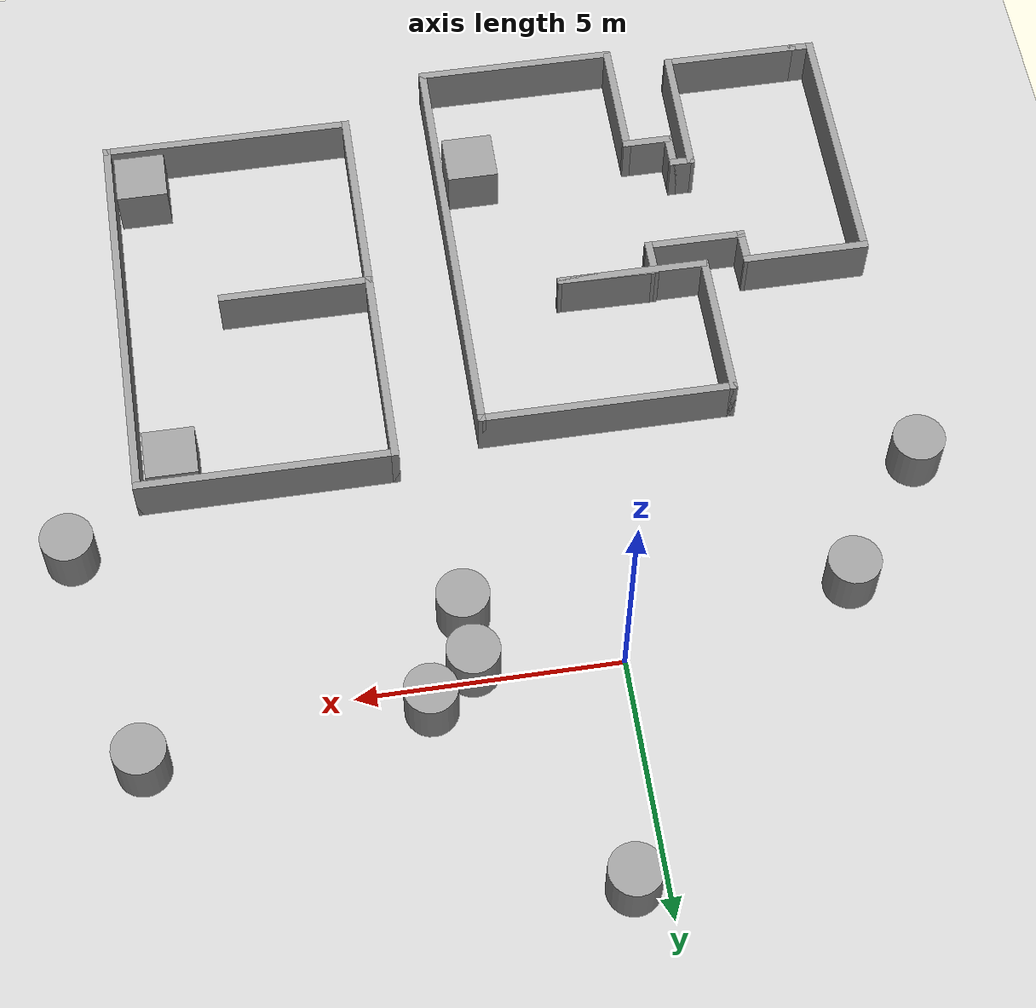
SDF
<sdf version="1.7">
 <world name="default">
  <light name="sun" type="directional">
   <pose>0 0 10 0 -0 0</pose>
   <diffuse>0.8 0.8 0.8 1</diffuse>
   <specular>0.2 0.2 0.2 1</specular>
   <attenuation>
    <range>1000</range>
    <constant>0.9</constant>
    <linear>0.01</linear>
    <quadratic>0.001</quadratic>
   </attenuation>
   <direction>-0.5 0.1 -0.9</direction>
   <spot><inner_angle>0</inner_angle><outer_angle>0</outer_angle><falloff>0</falloff></spot>
  </light>
  <model name="ground_plane">
   <static>1</static>
   <link name="link">
    <collision name="collision">
     <geometry><plane><normal>0 0 1</normal><size>100 100</size></plane></geometry>
     <surface>
      <contact><collide_bitmask>65535</collide_bitmask></contact>
      <friction><ode><mu>100</mu><mu2>50</mu2></ode></friction>
     </surface>
    </collision>
    <visual name="visual">
     <cast_shadows>0</cast_shadows>
     <geometry><plane><normal>0 0 1</normal><size>100 100</size></plane></geometry>
     <material>
      <script><uri>file://media/materials/scripts/gazebo.material</uri><name>Gazebo/Grey</name></script>
     </material>
    </visual>
   </link>
  </model>
  <gravity>0 0 -9.8</gravity>
  <magnetic_field>6e-06 2.3e-05 -4.2e-05</magnetic_field>
  <atmosphere type="adiabatic"/>
  <physics type="ode">
   <max_step_size>0.001</max_step_size>
   <real_time_factor>1</real_time_factor>
   <real_time_update_rate>1000</real_time_update_rate>
  </physics>
  <scene><ambient>0.4 0.4 0.4 1</ambient><background>0.7 0.7 0.7 1</background><shadows>1</shadows></scene>
  <spherical_coordinates>
   <surface_model>EARTH_WGS84</surface_model>
   <latitude_deg>0</latitude_deg>
   <longitude_deg>0</longitude_deg>
   <elevation>0</elevation>
   <heading_deg>0</heading_deg>
  </spherical_coordinates>
  <model name="racecar_rl_env4">
   <pose>-2.1054 -6.7075 0 0 -0 0</pose>
   <link name="Wall_0">
    <collision name="Wall_0_Collision">
     <geometry><box><size>5 0.15 1</size></box></geometry>
     <pose>0 0 0.5 0 -0 0</pose>
    </collision>
    <visual name="Wall_0_Visual">
     <pose>0 0 0.5 0 -0 0</pose>
     <geometry><box><size>5 0.15 1</size></box></geometry>
     <material>
      <script><uri>file://media/materials/scripts/gazebo.material</uri><name>Gazebo/Grey</name></script>
      <ambient>1 1 1 1</ambient>
     </material>
     <meta><layer>0</layer></meta>
    </visual>
    <pose>1.6004 1.7175 0 0 -0 0</pose>
   </link>
   <link name="Wall_10">
    <collision name="Wall_10_Collision">
     <geometry><box><size>0.5 0.15 1</size></box></geometry>
     <pose>0 0 0.5 0 -0 0</pose>
    </collision>
    <visual name="Wall_10_Visual">
     <pose>0 0 0.5 0 -0 0</pose>
     <geometry><box><size>0.5 0.15 1</size></box></geometry>
     <material>
      <script><uri>file://media/materials/scripts/gazebo.material</uri><name>Gazebo/Grey</name></script>
      <ambient>1 1 1 1</ambient>
     </material>
     <meta><layer>0</layer></meta>
    </visual>
    <pose>-0.849604 -3.6825 0 0 -0 3.14159</pose>
   </link>
   <link name="Wall_11">
    <collision name="Wall_11_Collision">
     <geometry><box><size>2.7041 0.15 1</size></box></geometry>
     <pose>0 0 0.5 0 -0 0</pose>
    </collision>
    <visual name="Wall_11_Visual">
     <pose>0 0 0.5 0 -0 0</pose>
     <geometry><box><size>2.7041 0.15 1</size></box></geometry>
     <material>
      <script><uri>file://media/materials/scripts/gazebo.material</uri><name>Gazebo/Grey</name></script>
      <ambient>1 1 1 1</ambient>
     </material>
     <meta><layer>0</layer></meta>
    </visual>
    <pose>-1.03611 -4.9595 0 0 -0 -1.5798</pose>
   </link>
   <link name="Wall_12">
    <collision name="Wall_12_Collision">
     <geometry><box><size>2.75 0.15 1</size></box></geometry>
     <pose>0 0 0.5 0 -0 0</pose>
    </collision>
    <visual name="Wall_12_Visual">
     <pose>0 0 0.5 0 -0 0</pose>
     <geometry><box><size>2.75 0.15 1</size></box></geometry>
     <material>
      <script><uri>file://media/materials/scripts/gazebo.material</uri><name>Gazebo/Grey</name></script>
      <ambient>1 1 1 1</ambient>
     </material>
     <meta><layer>0</layer></meta>
    </visual>
    <pose>-2.34761 -6.2365 0 0 -0 3.14159</pose>
   </link>
   <link name="Wall_14">
    <collision name="Wall_14_Collision">
     <geometry><box><size>3.027 0.15 1</size></box></geometry>
     <pose>0 0 0.5 0 -0 0</pose>
    </collision>
    <visual name="Wall_14_Visual">
     <pose>0 0 0.5 0 -0 0</pose>
     <geometry><box><size>3.027 0.15 1</size></box></geometry>
     <material>
      <script><uri>file://media/materials/scripts/gazebo.material</uri><name>Gazebo/Grey</name></script>
      <ambient>1 1 1 1</ambient>
     </material>
     <meta><layer>0</layer></meta>
    </visual>
    <pose>-0.824605 0.279 0 0 -0 -1.5708</pose>
   </link>
   <link name="Wall_15">
    <collision name="Wall_15_Collision">
     <geometry><box><size>3 0.15 1</size></box></geometry>
     <pose>0 0 0.5 0 -0 0</pose>
    </collision>
    <visual name="Wall_15_Visual">
     <pose>0 0 0.5 0 -0 0</pose>
     <geometry><box><size>3 0.15 1</size></box></geometry>
     <material>
      <script><uri>file://media/materials/scripts/gazebo.material</uri><name>Gazebo/Grey</name></script>
      <ambient>1 1 1 1</ambient>
     </material>
     <meta><layer>0</layer></meta>
    </visual>
    <pose>0.600396 -1.1595 0 0 -0 0</pose>
   </link>
   <link name="Wall_17">
    <collision name="Wall_17_Collision">
     <geometry><box><size>2.0002 0.15 1</size></box></geometry>
     <pose>0 0 0.5 0 -0 0</pose>
    </collision>
    <visual name="Wall_17_Visual">
     <pose>0 0 0.5 0 -0 0</pose>
     <geometry><box><size>2.0002 0.15 1</size></box></geometry>
     <material>
      <script><uri>file://media/materials/scripts/gazebo.material</uri><name>Gazebo/Grey</name></script>
      <ambient>1 1 1 1</ambient>
     </material>
     <meta><layer>0</layer></meta>
    </visual>
    <pose>1.1004 -1.146 0 0 -0 3.127</pose>
   </link>
   <link name="Wall_18">
    <collision name="Wall_18_Collision">
     <geometry><box><size>0.758053 0.15 1</size></box></geometry>
     <pose>0 0 0.5 0 -0 0</pose>
    </collision>
    <visual name="Wall_18_Visual">
     <pose>0 0 0.5 0 -0 0</pose>
     <geometry><box><size>0.758053 0.15 1</size></box></geometry>
     <material>
      <script><uri>file://media/materials/scripts/gazebo.material</uri><name>Gazebo/Grey</name></script>
      <ambient>1 1 1 1</ambient>
     </material>
     <meta><layer>0</layer></meta>
    </visual>
    <pose>0.179395 -1.4365 0 0 -0 -1.55764</pose>
   </link>
   <link name="Wall_19">
    <collision name="Wall_19_Collision">
     <geometry><box><size>2 0.15 1</size></box></geometry>
     <pose>0 0 0.5 0 -0 0</pose>
    </collision>
    <visual name="Wall_19_Visual">
     <pose>0 0 0.5 0 -0 0</pose>
     <geometry><box><size>2 0.15 1</size></box></geometry>
     <material>
      <script><uri>file://media/materials/scripts/gazebo.material</uri><name>Gazebo/Grey</name></script>
      <ambient>1 1 1 1</ambient>
     </material>
     <meta><layer>0</layer></meta>
    </visual>
    <pose>-0.741604 -1.7405 0 0 -0 3.14159</pose>
   </link>
   <link name="Wall_2">
    <collision name="Wall_2_Collision">
     <geometry><box><size>8.5 0.15 1</size></box></geometry>
     <pose>0 0 0.5 0 -0 0</pose>
    </collision>
    <visual name="Wall_2_Visual">
     <pose>0 0 0.5 0 -0 0</pose>
     <geometry><box><size>8.5 0.15 1</size></box></geometry>
     <material>
      <script><uri>file://media/materials/scripts/gazebo.material</uri><name>Gazebo/Grey</name></script>
      <ambient>1 1 1 1</ambient>
     </material>
     <meta><layer>0</layer></meta>
    </visual>
    <pose>4.02539 -2.4575 0 0 -0 -1.5708</pose>
   </link>
   <link name="Wall_20">
    <collision name="Wall_20_Collision">
     <geometry><box><size>0.758053 0.15 1</size></box></geometry>
     <pose>0 0 0.5 0 -0 0</pose>
    </collision>
    <visual name="Wall_20_Visual">
     <pose>0 0 0.5 0 -0 0</pose>
     <geometry><box><size>0.758053 0.15 1</size></box></geometry>
     <material>
      <script><uri>file://media/materials/scripts/gazebo.material</uri><name>Gazebo/Grey</name></script>
      <ambient>1 1 1 1</ambient>
     </material>
     <meta><layer>0</layer></meta>
    </visual>
    <pose>-1.6706 -1.4365 0 0 -0 1.58395</pose>
   </link>
   <link name="Wall_21">
    <collision name="Wall_21_Collision">
     <geometry><box><size>2.5 0.15 1</size></box></geometry>
     <pose>0 0 0.5 0 -0 0</pose>
    </collision>
    <visual name="Wall_21_Visual">
     <pose>0 0 0.5 0 -0 0</pose>
     <geometry><box><size>2.5 0.15 1</size></box></geometry>
     <material>
      <script><uri>file://media/materials/scripts/gazebo.material</uri><name>Gazebo/Grey</name></script>
      <ambient>1 1 1 1</ambient>
     </material>
     <meta><layer>0</layer></meta>
    </visual>
    <pose>-2.8496 -1.1325 0 0 -0 3.14159</pose>
   </link>
   <link name="Wall_22">
    <collision name="Wall_22_Collision">
     <geometry><box><size>5.25 0.15 1</size></box></geometry>
     <pose>0 0 0.5 0 -0 0</pose>
    </collision>
    <visual name="Wall_22_Visual">
     <pose>0 0 0.5 0 -0 0</pose>
     <geometry><box><size>5.25 0.15 1</size></box></geometry>
     <material>
      <script><uri>file://media/materials/scripts/gazebo.material</uri><name>Gazebo/Grey</name></script>
      <ambient>1 1 1 1</ambient>
     </material>
     <meta><layer>0</layer></meta>
    </visual>
    <pose>-4.02461 -3.6825 0 0 -0 -1.5708</pose>
   </link>
   <link name="Wall_23">
    <collision name="Wall_23_Collision">
     <geometry><box><size>0.527021 0.15 1</size></box></geometry>
     <pose>0 0 0.5 0 -0 0</pose>
    </collision>
    <visual name="Wall_23_Visual">
     <pose>0 0 0.5 0 -0 0</pose>
     <geometry><box><size>0.527021 0.15 1</size></box></geometry>
     <material>
      <script><uri>file://media/materials/scripts/gazebo.material</uri><name>Gazebo/Grey</name></script>
      <ambient>1 1 1 1</ambient>
     </material>
     <meta><layer>0</layer></meta>
    </visual>
    <pose>-3.8361 -6.2345 0 0 -0 -0.01061</pose>
   </link>
   <link name="Wall_3">
    <collision name="Wall_3_Collision">
     <geometry><box><size>4 0.15 1</size></box></geometry>
     <pose>0 0 0.5 0 -0 0</pose>
    </collision>
    <visual name="Wall_3_Visual">
     <pose>0 0 0.5 0 -0 0</pose>
     <geometry><box><size>4 0.15 1</size></box></geometry>
     <material>
      <script><uri>file://media/materials/scripts/gazebo.material</uri><name>Gazebo/Grey</name></script>
      <ambient>1 1 1 1</ambient>
     </material>
     <meta><layer>0</layer></meta>
    </visual>
    <pose>2.10039 -6.6325 0 0 -0 3.14159</pose>
   </link>
   <link name="Wall_4">
    <collision name="Wall_4_Collision">
     <geometry><box><size>2.5 0.15 1</size></box></geometry>
     <pose>0 0 0.5 0 -0 0</pose>
    </collision>
    <visual name="Wall_4_Visual">
     <pose>0 0 0.5 0 -0 0</pose>
     <geometry><box><size>2.5 0.15 1</size></box></geometry>
     <material>
      <script><uri>file://media/materials/scripts/gazebo.material</uri><name>Gazebo/Grey</name></script>
      <ambient>1 1 1 1</ambient>
     </material>
     <meta><layer>0</layer></meta>
    </visual>
    <pose>0.175396 -5.4575 0 0 -0 1.5708</pose>
   </link>
   <link name="Wall_5">
    <collision name="Wall_5_Collision">
     <geometry><box><size>1 0.15 1</size></box></geometry>
     <pose>0 0 0.5 0 -0 0</pose>
    </collision>
    <visual name="Wall_5_Visual">
     <pose>0 0 0.5 0 -0 0</pose>
     <geometry><box><size>1 0.15 1</size></box></geometry>
     <material>
      <script><uri>file://media/materials/scripts/gazebo.material</uri><name>Gazebo/Grey</name></script>
      <ambient>1 1 1 1</ambient>
     </material>
     <meta><layer>0</layer></meta>
    </visual>
    <pose>-0.249605 -4.2825 0 0 -0 3.14159</pose>
   </link>
   <link name="Wall_9">
    <collision name="Wall_9_Collision">
     <geometry><box><size>0.75 0.15 1</size></box></geometry>
     <pose>0 0 0.5 0 -0 0</pose>
    </collision>
    <visual name="Wall_9_Visual">
     <pose>0 0 0.5 0 -0 0</pose>
     <geometry><box><size>0.75 0.15 1</size></box></geometry>
     <material>
      <script><uri>file://media/materials/scripts/gazebo.material</uri><name>Gazebo/Grey</name></script>
      <ambient>1 1 1 1</ambient>
     </material>
     <meta><layer>0</layer></meta>
    </visual>
    <pose>-0.674604 -3.9825 0 0 -0 1.5708</pose>
   </link>
   <static>1</static>
  </model>
  <model name="unit_box">
   <pose>1.26525 -11.1177 0.499995 -1e-05 -0 0</pose>
   <link name="link">
    <inertial>
     <mass>1</mass>
     <inertia>
      <ixx>0.166667</ixx>
      <ixy>0</ixy>
      <ixz>0</ixz>
      <iyy>0.166667</iyy>
      <iyz>0</iyz>
      <izz>0.166667</izz>
     </inertia>
    </inertial>
    <collision name="collision"><geometry><box><size>1 1 1</size></box></geometry></collision>
    <visual name="visual">
     <geometry><box><size>1 1 1</size></box></geometry>
     <material>
      <script><name>Gazebo/Grey</name><uri>file://media/materials/scripts/gazebo.material</uri></script>
     </material>
    </visual>
   </link>
  </model>
  <model name="Untitled">
   <pose>4.2815 -6.2045 0 0 -0 0</pose>
   <link name="Wall_0">
    <collision name="Wall_0_Collision">
     <geometry><box><size>8 0.15 1</size></box></geometry>
     <pose>0 0 0.5 0 -0 0</pose>
    </collision>
    <visual name="Wall_0_Visual">
     <pose>0 0 0.5 0 -0 0</pose>
     <geometry><box><size>8 0.15 1</size></box></geometry>
     <material>
      <script><uri>file://media/materials/scripts/gazebo.material</uri><name>Gazebo/Grey</name></script>
      <ambient>1 1 1 1</ambient>
     </material>
     <meta><layer>0</layer></meta>
    </visual>
    <pose>-0.6435 -2.2045 0 0 -0 -1.5708</pose>
   </link>
   <link name="Wall_2">
    <collision name="Wall_2_Collision">
     <geometry><box><size>5 0.15 1</size></box></geometry>
     <pose>0 0 0.5 0 -0 0</pose>
    </collision>
    <visual name="Wall_2_Visual">
     <pose>0 0 0.5 0 -0 0</pose>
     <geometry><box><size>5 0.15 1</size></box></geometry>
     <material>
      <script><uri>file://media/materials/scripts/gazebo.material</uri><name>Gazebo/Grey</name></script>
      <ambient>1 1 1 1</ambient>
     </material>
     <meta><layer>0</layer></meta>
    </visual>
    <pose>1.7815 1.7205 0 0 -0 0</pose>
   </link>
   <link name="Wall_3">
    <collision name="Wall_3_Collision">
     <geometry><box><size>8 0.15 1</size></box></geometry>
     <pose>0 0 0.5 0 -0 0</pose>
    </collision>
    <visual name="Wall_3_Visual">
     <pose>0 0 0.5 0 -0 0</pose>
     <geometry><box><size>8 0.15 1</size></box></geometry>
     <material>
      <script><uri>file://media/materials/scripts/gazebo.material</uri><name>Gazebo/Grey</name></script>
      <ambient>1 1 1 1</ambient>
     </material>
     <meta><layer>0</layer></meta>
    </visual>
    <pose>4.2065 -2.2045 0 0 -0 -1.5708</pose>
   </link>
   <link name="Wall_4">
    <collision name="Wall_4_Collision">
     <geometry><box><size>5 0.15 1</size></box></geometry>
     <pose>0 0 0.5 0 -0 0</pose>
    </collision>
    <visual name="Wall_4_Visual">
     <pose>0 0 0.5 0 -0 0</pose>
     <geometry><box><size>5 0.15 1</size></box></geometry>
     <material>
      <script><uri>file://media/materials/scripts/gazebo.material</uri><name>Gazebo/Grey</name></script>
      <ambient>1 1 1 1</ambient>
     </material>
     <meta><layer>0</layer></meta>
    </visual>
    <pose>1.7815 -6.1295 0 0 -0 3.14159</pose>
   </link>
   <link name="Wall_7">
    <collision name="Wall_7_Collision">
     <geometry><box><size>3 0.15 1</size></box></geometry>
     <pose>0 0 0.5 0 -0 0</pose>
    </collision>
    <visual name="Wall_7_Visual">
     <pose>0 0 0.5 0 -0 0</pose>
     <geometry><box><size>3 0.15 1</size></box></geometry>
     <material>
      <script><uri>file://media/materials/scripts/gazebo.material</uri><name>Gazebo/Grey</name></script>
      <ambient>1 1 1 1</ambient>
     </material>
     <meta><layer>0</layer></meta>
    </visual>
    <pose>0.8105 -2.2475 0 0 -0 0</pose>
   </link>
   <static>1</static>
  </model>
  <model name="unit_box_0">
   <pose>7.81047 -5.11212 0.499995 -1e-05 -0 0</pose>
   <link name="link">
    <inertial>
     <mass>1</mass>
     <inertia>
      <ixx>0.166667</ixx>
      <ixy>0</ixy>
      <ixz>0</ixz>
      <iyy>0.166667</iyy>
      <iyz>0</iyz>
      <izz>0.166667</izz>
     </inertia>
    </inertial>
    <collision name="collision"><geometry><box><size>1 1 1</size></box></geometry></collision>
    <visual name="visual">
     <geometry><box><size>1 1 1</size></box></geometry>
     <material>
      <script><name>Gazebo/Grey</name><uri>file://media/materials/scripts/gazebo.material</uri></script>
     </material>
    </visual>
   </link>
  </model>
  <model name="unit_box_1">
   <pose>7.86373 -11.6163 0.499995 -1e-05 -0 0</pose>
   <link name="link">
    <inertial>
     <mass>1</mass>
     <inertia>
      <ixx>0.166667</ixx>
      <ixy>0</ixy>
      <ixz>0</ixz>
      <iyy>0.166667</iyy>
      <iyz>0</iyz>
      <izz>0.166667</izz>
     </inertia>
    </inertial>
    <collision name="collision"><geometry><box><size>1 1 1</size></box></geometry></collision>
    <visual name="visual">
     <geometry><box><size>1 1 1</size></box></geometry>
     <material>
      <script><name>Gazebo/Grey</name><uri>file://media/materials/scripts/gazebo.material</uri></script>
     </material>
    </visual>
   </link>
  </model>
  <model name="unit_cylinder">
   <pose>2.79874 -1.35858 0.499993 -3e-06 -4e-06 -0</pose>
   <link name="link">
    <inertial>
     <mass>1</mass>
     <inertia><ixx>0.145833</ixx><ixy>0</ixy><ixz>0</ixz><iyy>0.145833</iyy><iyz>0</iyz><izz>0.125</izz></inertia>
    </inertial>
    <collision name="collision">
     <geometry><cylinder><radius>0.5</radius><length>1</length></cylinder></geometry>
    </collision>
    <visual name="visual">
     <geometry><cylinder><radius>0.5</radius><length>1</length></cylinder></geometry>
     <material>
      <script><name>Gazebo/Grey</name><uri>file://media/materials/scripts/gazebo.material</uri></script>
     </material>
    </visual>
   </link>
  </model>
  <model name="unit_cylinder_0">
   <pose>2.76988 -0.218416 0.499993 -3e-06 -4e-06 -0</pose>
   <link name="link">
    <inertial>
     <mass>1</mass>
     <inertia><ixx>0.145833</ixx><ixy>0</ixy><ixz>0</ixz><iyy>0.145833</iyy><iyz>0</iyz><izz>0.125</izz></inertia>
    </inertial>
    <collision name="collision">
     <geometry><cylinder><radius>0.5</radius><length>1</length></cylinder></geometry>
    </collision>
    <visual name="visual">
     <geometry><cylinder><radius>0.5</radius><length>1</length></cylinder></geometry>
     <material>
      <script><name>Gazebo/Grey</name><uri>file://media/materials/scripts/gazebo.material</uri></script>
     </material>
    </visual>
   </link>
  </model>
  <model name="unit_cylinder_1">
   <pose>3.62656 0.443459 0.499993 -3e-06 -4e-06 -0</pose>
   <link name="link">
    <inertial>
     <mass>1</mass>
     <inertia><ixx>0.145833</ixx><ixy>0</ixy><ixz>0</ixz><iyy>0.145833</iyy><iyz>0</iyz><izz>0.125</izz></inertia>
    </inertial>
    <collision name="collision">
     <geometry><cylinder><radius>0.5</radius><length>1</length></cylinder></geometry>
    </collision>
    <visual name="visual">
     <geometry><cylinder><radius>0.5</radius><length>1</length></cylinder></geometry>
     <material>
      <script><name>Gazebo/Grey</name><uri>file://media/materials/scripts/gazebo.material</uri></script>
     </material>
    </visual>
   </link>
  </model>
  <model name="unit_cylinder_2">
   <pose>-6.16203 -3.34128 0.499993 -3e-06 -4e-06 -0</pose>
   <link name="link">
    <inertial>
     <mass>1</mass>
     <inertia><ixx>0.145833</ixx><ixy>0</ixy><ixz>0</ixz><iyy>0.145833</iyy><iyz>0</iyz><izz>0.125</izz></inertia>
    </inertial>
    <collision name="collision">
     <geometry><cylinder><radius>0.5</radius><length>1</length></cylinder></geometry>
    </collision>
    <visual name="visual">
     <geometry><cylinder><radius>0.5</radius><length>1</length></cylinder></geometry>
     <material>
      <script><name>Gazebo/Grey</name><uri>file://media/materials/scripts/gazebo.material</uri></script>
     </material>
    </visual>
   </link>
  </model>
  <model name="unit_cylinder_3">
   <pose>-4.39635 -0.966663 0.499993 -3e-06 -4e-06 -0</pose>
   <link name="link">
    <inertial>
     <mass>1</mass>
     <inertia><ixx>0.145833</ixx><ixy>0</ixy><ixz>0</ixz><iyy>0.145833</iyy><iyz>0</iyz><izz>0.125</izz></inertia>
    </inertial>
    <collision name="collision">
     <geometry><cylinder><radius>0.5</radius><length>1</length></cylinder></geometry>
    </collision>
    <visual name="visual">
     <geometry><cylinder><radius>0.5</radius><length>1</length></cylinder></geometry>
     <material>
      <script><name>Gazebo/Grey</name><uri>file://media/materials/scripts/gazebo.material</uri></script>
     </material>
    </visual>
   </link>
  </model>
  <model name="unit_cylinder_4">
   <pose>0.620055 4.33082 0.499993 -3e-06 -4e-06 -0</pose>
   <link name="link">
    <inertial>
     <mass>1</mass>
     <inertia><ixx>0.145833</ixx><ixy>0</ixy><ixz>0</ixz><iyy>0.145833</iyy><iyz>0</iyz><izz>0.125</izz></inertia>
    </inertial>
    <collision name="collision">
     <geometry><cylinder><radius>0.5</radius><length>1</length></cylinder></geometry>
    </collision>
    <visual name="visual">
     <geometry><cylinder><radius>0.5</radius><length>1</length></cylinder></geometry>
     <material>
      <script><name>Gazebo/Grey</name><uri>file://media/materials/scripts/gazebo.material</uri></script>
     </material>
    </visual>
   </link>
  </model>
  <model name="unit_cylinder_5">
   <pose>8.85314 0.838482 0.499993 -3e-06 -4e-06 -0</pose>
   <link name="link">
    <inertial>
     <mass>1</mass>
     <inertia><ixx>0.145833</ixx><ixy>0</ixy><ixz>0</ixz><iyy>0.145833</iyy><iyz>0</iyz><izz>0.125</izz></inertia>
    </inertial>
    <collision name="collision">
     <geometry><cylinder><radius>0.5</radius><length>1</length></cylinder></geometry>
    </collision>
    <visual name="visual">
     <geometry><cylinder><radius>0.5</radius><length>1</length></cylinder></geometry>
     <material>
      <script><name>Gazebo/Grey</name><uri>file://media/materials/scripts/gazebo.material</uri></script>
     </material>
    </visual>
   </link>
  </model>
  <model name="unit_cylinder_6">
   <pose>9.84558 -3.58436 0.499993 -3e-06 -4e-06 -0</pose>
   <link name="link">
    <inertial>
     <mass>1</mass>
     <inertia><ixx>0.145833</ixx><ixy>0</ixy><ixz>0</ixz><iyy>0.145833</iyy><iyz>0</iyz><izz>0.125</izz></inertia>
    </inertial>
    <collision name="collision">
     <geometry><cylinder><radius>0.5</radius><length>1</length></cylinder></geometry>
    </collision>
    <visual name="visual">
     <geometry><cylinder><radius>0.5</radius><length>1</length></cylinder></geometry>
     <material>
      <script><name>Gazebo/Grey</name><uri>file://media/materials/scripts/gazebo.material</uri></script>
     </material>
    </visual>
   </link>
  </model>
 </world>
</sdf>
